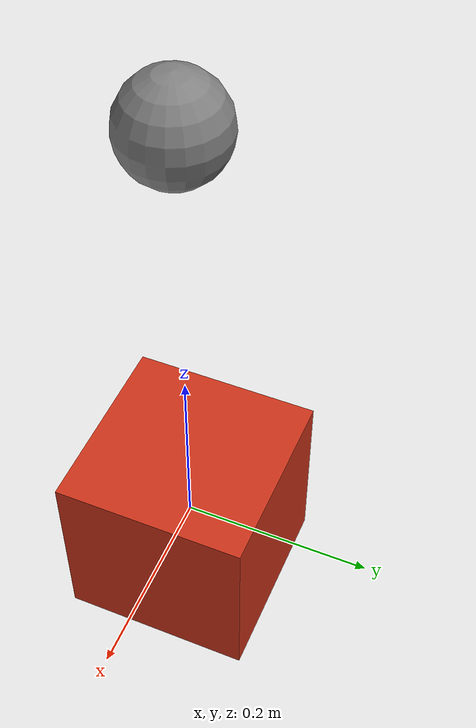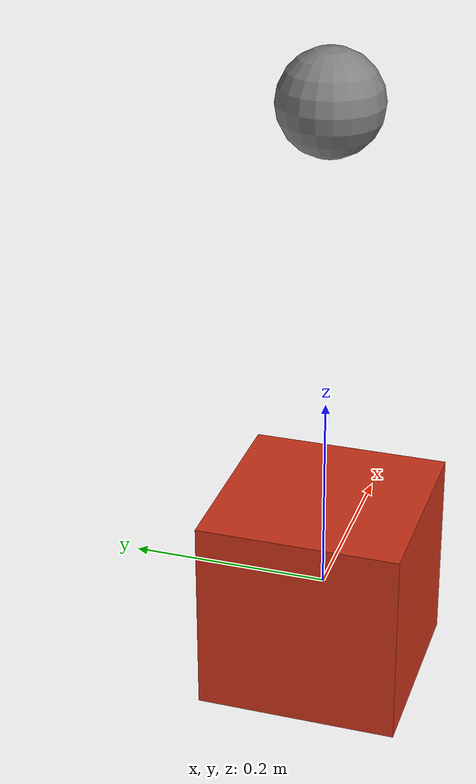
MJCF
<mujoco model="complete_robot_demo">
  <asset>
    <material name="mat_robot" rgba="0.8 0.2 0.1 1" roughness="0.6" metallic="0.0"/>
  </asset>
  <worldbody>
    <light name="sun" directional="true" pos="0 -1 2" diffuse="1 0.95 0.9"/>
    <body name="base" pos="0 0 0">
      <inertial pos="0 0 0" mass="1.0" diaginertia="0.1 0.1 0.1"/>
      <geom name="base_geom" type="box" size="0.1 0.1 0.1" material="mat_robot"/>
      <joint name="joint0" type="hinge" axis="0 0 1" range="-1.57 1.57"/>
      <body name="link1" pos="0 0 0.5">
        <inertial pos="0 0 0.25" mass="0.5" diaginertia="0.05 0.05 0.01"/>
        <geom name="tip" type="sphere" size="0.05"/>
        <camera name="track" pos="1 -2 1" fovy="60"/>
      </body>
    </body>
  </worldbody>
  <actuator>
    <motor name="motor0" joint="joint0" gear="12" ctrllimited="true" ctrlrange="-1 1"/>
  </actuator>
  <sensor>
    <framepos name="imu0" objtype="body" objname="link1"/>
  </sensor>
</mujoco>
